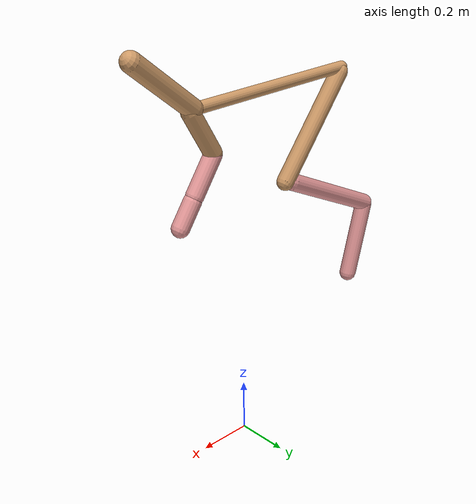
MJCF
<mujoco model="cheetah">
  <compiler angle="radian" coordinate="local" inertiafromgeom="true" settotalmass="14" />
  <default>
    <joint armature=".1" damping=".01" limited="true" solimplimit="0 .8 .03" solreflimit=".02 1" stiffness="8" />
    <geom conaffinity="0" condim="3" contype="1" friction="0.8 .1 .1" rgba="0.8 0.6 .4 1" solimp="0.0 0.8 0.01" solref="0.02 1" />
    <motor ctrllimited="true" ctrlrange="-1 1" />
  </default>
  <size nstack="300000" nuser_geom="1" />
  <option gravity="0 0 -9.81" timestep="0.01" />
  <worldbody>
    <body name="torso" pos="0.0 0.0 1.331525882286035">
      <joint armature="0" axis="1 0 0" damping="0" limited="false" name="ignorex" pos="0 0 0" stiffness="0" type="slide" />
      <joint armature="0" axis="0 0 1" damping="0" limited="false" name="ignorez" pos="0 0 0" stiffness="0" type="slide" />
      <joint armature="0" axis="0 1 0" damping="0" limited="false" name="ignorey" pos="0 0 0" stiffness="0" type="hinge" />
      <geom fromto="-0.5 0.0 0.0 0.22256856886646625 0.0 0.0" name="torso" size="0.02120180765053508" type="capsule" />
      <geom axisangle="0 1 0 .87" name="head" pos="0.32256856886646623 0.0 0.1" size="0.03500475271469641 0.15" type="capsule" />

      <body name="bthigh" pos="-.5 0 0">
        <joint axis="0 1 0" damping="6" name="bthigh" pos="0 0 0" range="-.52 1.05" stiffness="240" type="hinge" />
        <geom axisangle="0 1 0 -3.8" name="bthigh" pos="0.14731523584475364 0.0 -0.19150980659817973" size="0.0322 0.22260275672158905" type="capsule" />
        <body name="bshin" pos="0.25463047168950725 0.0 -0.37301961319635946">
          <joint axis="0 1 0" damping="4.5" name="bshin" pos="0 0 0" range="-.785 .785" stiffness="180" type="hinge" />
          <geom axisangle="0 1 0 -2.03" name="bshin" pos="-0.21180346452586973 0.0 -0.10590173226293487" rgba="0.9 0.6 0.6 1" size="0.0322 0.23027871384991971" type="capsule" />
          <body name="bfoot" pos="-0.42360692905173947 0.0 -0.21180346452586973">
            <joint axis="0 1 0" damping="3" name="bfoot" pos="0 0 0" range="-.4 .785" stiffness="120" type="hinge" />
            <geom axisangle="0 1 0 -.27" name="bfoot" pos="0.04486448905167279 0.0 -0.14506184793374202" rgba="0.9 0.6 0.6 1" size="0.0322 0.14430799401261635" type="capsule" />
            <inertial mass="10" />
          </body>
        </body>
      </body>
      <body name="fthigh" pos="0.22256856886646625 0.0 0.0">
        <joint axis="0 1 0" damping="4.5" name="fthigh" pos="0 0 0" range="-1.5 0.8" stiffness="180" type="hinge" />
        <geom axisangle="0 1 0 .52" name="fthigh" pos="-0.04989554608158897 0.0 -0.0855352218541525" size="0.0322 0.0931" type="capsule" />
        <body name="fshin" pos="-0.09979109216317794 0.0 -0.171070443708305">
          <joint axis="0 1 0" damping="3" name="fshin" pos="0 0 0" range="-1.2 1.1" stiffness="120" type="hinge" />
          <geom axisangle="0 1 0 -.6" name="fshin" pos="0.046381400387749405 0.0 -0.06422040053688378" rgba="0.9 0.6 0.6 1" size="0.0322 0.07419999999999999" type="capsule" />
          <body name="ffoot" pos="0.09276280077549881 0.0 -0.12844080107376757">
            <joint axis="0 1 0" damping="1.5" name="ffoot" pos="0 0 0" range="-3.1 -0.3" stiffness="60" type="hinge" />
            <geom axisangle="0 1 0 -.6" name="ffoot" pos="0.033644090582416526 0.0 -0.05233525201709238" rgba="0.9 0.6 0.6 1" size="0.0322 0.049" type="capsule" />
            <inertial mass="10" />
          </body>
        </body>
      </body>
    </body>
  </worldbody>
  <actuator>
    <motor gear="120" joint="bthigh" name="bthigh" />
    <motor gear="90" joint="bshin" name="bshin" />
    <motor gear="60" joint="bfoot" name="bfoot" />
    <motor gear="120" joint="fthigh" name="fthigh" />
    <motor gear="60" joint="fshin" name="fshin" />
    <motor gear="30" joint="ffoot" name="ffoot" />
  </actuator>
</mujoco>
